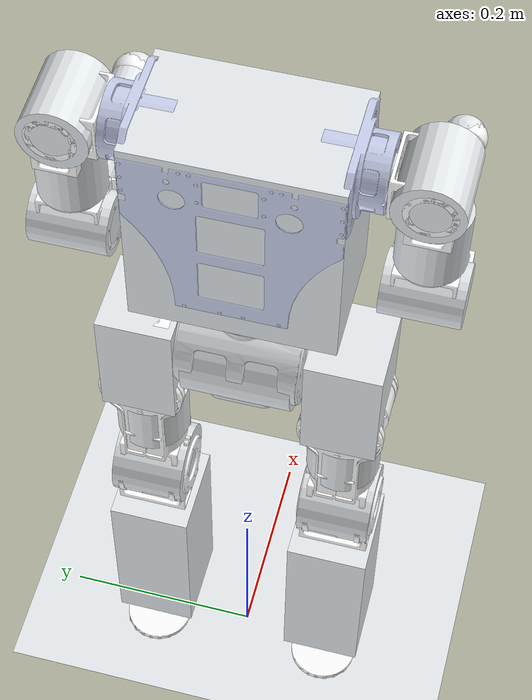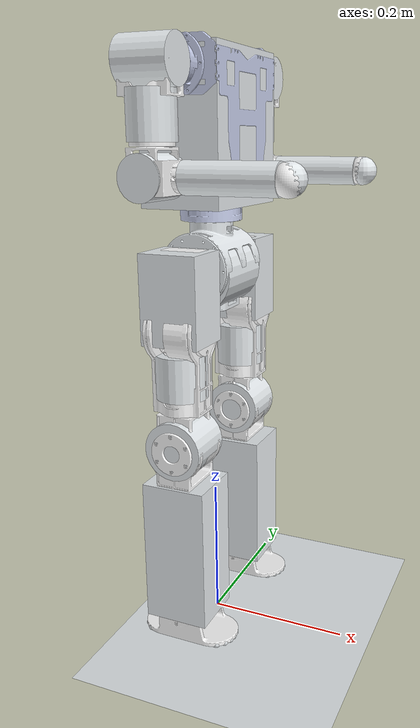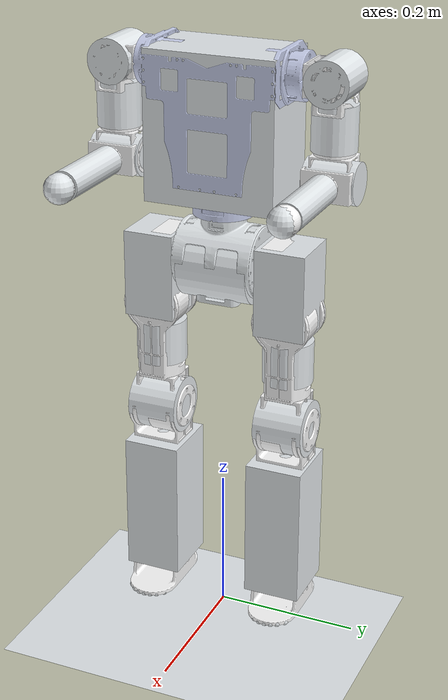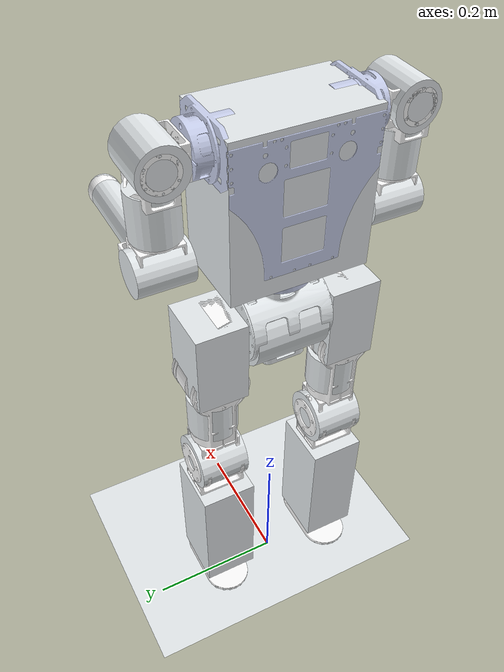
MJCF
<mujoco model="qlmini2">
    <compiler angle="radian" meshdir="../meshes/"/>
    <size njmax="500" nconmax="1000"/>
    <default>
        <light castshadow="false"/>
        <geom rgba="0.898 0.918 0.929 1"/>
        <default class="visual">
            <geom contype="0" conaffinity="0" group="0" type="mesh"/>
        </default>
        <default class="collision">
            <geom contype="1" conaffinity="1" friction="1.0 0.3 0.3"
                  margin="0" group="1"/>
        </default>
        <!-- Rotor inertia is not specified in the supplied motor manuals. -->
        <joint damping="0.1" frictionloss="0.02"/>
    </default>

    <asset>
        <mesh name="base_link" file="base_link.STL"/>
        <mesh name="right_hip_pitch_link" file="right_hip_pitch_link.STL"/>
        <mesh name="right_hip_roll_link" file="right_hip_roll_link.STL"/>
        <mesh name="right_hip_yaw_link" file="right_hip_yaw_link.STL"/>
        <mesh name="right_knee_link" file="right_knee_link.STL"/>
        <mesh name="right_foot" file="right_foot.STL"/>
        <mesh name="left_hip_pitch_link" file="left_hip_pitch_link.STL"/>
        <mesh name="left_hip_roll_link" file="left_hip_roll_link.STL"/>
        <mesh name="left_hip_yaw_link" file="left_hip_yaw_link.STL"/>
        <mesh name="left_knee_link" file="left_knee_link.STL"/>
        <mesh name="left_foot" file="left_foot.STL"/>
        <mesh name="waist_yaw_link" file="waist_yaw_link.STL"/>
        <mesh name="right_shoulder_pitch_link" file="right_shoulder_pitch_link.STL"/>
        <mesh name="right_shoulder_roll_link" file="right_shoulder_roll_link.STL"/>
        <mesh name="right_shoulder_yaw_link" file="right_shoulder_yaw_link.STL"/>
        <mesh name="right_elbow_link" file="right_elbow_link.STL"/>
        <mesh name="left_shoulder_pitch_link" file="left_shoulder_pitch_link.STL"/>
        <mesh name="left_shoulder_roll_link" file="left_shoulder_roll_link.STL"/>
        <mesh name="left_shoulder_yaw_link" file="left_shoulder_yaw_link.STL"/>
        <mesh name="left_elbow_link" file="left_elbow_link.STL"/>
        <texture type="skybox" builtin="flat" rgb1="0 0 0" rgb2="0 0 0" width="512" height="3072"/>
        <texture type="2d" name="groundplane" builtin="checker" mark="edge" rgb1="0.2 0.3 0.4" rgb2="0.1 0.2 0.3"
                 markrgb="0.8 0.8 0.8" width="300" height="300"/>
        <material name="groundplane" texture="groundplane" texuniform="true" texrepeat="5 5" reflectance="0.2"/>
    </asset>

    <worldbody>
        <light pos="1 0 3.5" dir="0 0 -1" directional="true"/>
        <geom name="floor" size="0 0 0.05" type="plane" material="groundplane"/>
        <!-- Coarse primitive collision bodies; dimensions are intended for later tuning. -->
        <body name="base_link" pos="0.00000000 0.00000000 0.48" quat="1 0 0 0">
            <freejoint name="floating_base_joint"/>
            <inertial pos="-5.73678996165089E-06 -1.69193884976709E-05 0.058874742378733" mass="1.6864" fullinertia="0.00328255380983 0.00197420750325 0.00294303911718 1.02078981554e-07 6.12473889324e-07 0"/>
            <geom class="visual" type="mesh" rgba="0.898 0.918 0.929 1" mesh="base_link"/>
            <geom name="base_link_collision" class="collision" type="cylinder" pos="0 0 0.05" size="0.05 0.05" euler="1.570796 0 0"/>
            <body name="right_hip_pitch_link" pos="0 -0.054017 0.059" quat="1.0 0.0 0.0 0.0">
                <joint name="right_hip_pitch_joint" range="-2.2689 2.2689" axis="0 1 0" armature="0.005"/>
                <inertial pos="0.00335760201078564 -0.0373080226674996 -0.0624910254096332" mass="0.6373" fullinertia="0.000959468049515 0.000875940475903 0.000435662239207 5.71504451028e-06 2.47285579772e-05 -0.000115729651333"/>
                <geom class="visual" type="mesh" rgba="1 1 1 1" mesh="right_hip_pitch_link"/>
                <geom name="right_hip_pitch_link_collision" class="collision" type="box" pos="0.0 -0.04 -0.03" size="0.04 0.035 0.06"/>
                <body name="right_hip_roll_link" pos="0.00945 -0.04 -0.074" quat="1.0 0.0 0.0 0.0">
                    <joint name="right_hip_roll_joint" range="-1.0472 0.8727" axis="1 0 0" armature="0.003"/>
                    <inertial pos="-0.0096013 -1.7563E-07 -0.060983" mass="0.5982" fullinertia="0.00105017033329 0.00119736747891 0.000458065536023 -3.20924009358e-07 4.38596146122e-06 0"/>
                    <geom class="visual" type="mesh" rgba="1 1 1 1" mesh="right_hip_roll_link"/>
                    <geom name="right_hip_roll_link_collision" class="collision" type="cylinder" pos="-0.01 0 -0.06" size="0.035 0.03"/>
                    <body name="right_hip_yaw_link" pos="-0.00945 0 -0.104" quat="1.0 0.0 0.0 0.0">
                        <joint name="right_hip_yaw_joint" range="-0.8727 0.8727" axis="0 0 1" armature="0.002"/>
                        <inertial pos="-4.23390510687766E-06 0.00413396977649125 -0.0521520218910281" mass="0.5783" fullinertia="0.000441333988583 0.000510358313677 0.000353000607916 0 -3.32914751257e-07 8.32286878143e-06"/>
                        <geom class="visual" type="mesh" rgba="1 1 1 1" mesh="right_hip_yaw_link"/>
                        <geom name="right_hip_yaw_link_collision" class="collision" type="cylinder" pos="0 0 -0.054" size="0.04 0.035" euler="1.570796 0 0"/>
                        <body name="right_knee_link" pos="0 0.00945 -0.056" quat="1.0 0.0 0.0 0.0">
                            <joint name="right_knee_joint" range="-0.1745 2.0499" axis="0 1 0" armature="0.003"/>
                            <inertial pos="7.14113041347386E-06 -0.00774899527578245 -0.163319540342136" mass="0.9700" fullinertia="0.00849153976784 0.00842953190829 0.00068783406411 0 3.31592831806e-07 0.000135068813489"/>
                            <geom class="visual" type="mesh" rgba="1 1 1 1" mesh="right_knee_link"/>
                            <geom name="right_knee_link_collision" class="collision" type="box" pos="0 -0.008 -0.15" size="0.045 0.04 0.1"/>
                            <body name="right_foot" pos="0 0 -0.23" quat="1.0 0.0 0.0 0.0">
                                <joint name="right_foot_pitch_joint" range="-1.0472 1.0472" axis="0 1 0" armature="0.003"/>
                                <inertial pos="0.00298442847510103 -0.00986247346418476 -0.025627500432694" mass="0.4411" fullinertia="0.000417784418845 0.000528973573876 0.000581887348508 -5.52915752035e-07 1.25544070305e-05 3.74976848163e-06"/>
                                <geom class="visual" type="mesh" rgba="1 1 1 1" mesh="right_foot"/>
                                <geom name="right_foot1_collision" class="collision" type="capsule" size="0.005" fromto="-0.046583 -0.035 -0.05 0.056583 -0.035 -0.05"/>
                                <geom name="right_foot2_collision" class="collision" type="capsule" size="0.005" fromto="-0.054944 -0.026667 -0.05 0.064944 -0.026667 -0.05"/>
                                <geom name="right_foot3_collision" class="collision" type="capsule" size="0.005" fromto="-0.058819 -0.018333 -0.05 0.068819 -0.018333 -0.05"/>
                                <geom name="right_foot4_collision" class="collision" type="capsule" size="0.005" fromto="-0.06 -0.01 -0.05 0.07 -0.01 -0.05"/>
                                <geom name="right_foot5_collision" class="collision" type="capsule" size="0.005" fromto="-0.058819 -0.001667 -0.05 0.068819 -0.001667 -0.05"/>
                                <geom name="right_foot6_collision" class="collision" type="capsule" size="0.005" fromto="-0.054944 0.006667 -0.05 0.064944 0.006667 -0.05"/>
                                <geom name="right_foot7_collision" class="collision" type="capsule" size="0.005" fromto="-0.046583 0.015 -0.05 0.056583 0.015 -0.05"/>
                                <site name="right_foot" pos="0.005 -0.01 -0.055" size="0.005"/>
                            </body>
                        </body>
                    </body>
                </body>
            </body>
            <body name="left_hip_pitch_link" pos="0 0.053983 0.059" quat="1.0 0.0 0.0 0.0">
                <joint name="left_hip_pitch_joint" range="-2.2689 2.2689" axis="0 1 0" armature="0.005"/>
                <inertial pos="0.0033576 0.037308 -0.062491" mass="0.6373" fullinertia="0.000959467884051 0.000875940324844 0.000435662164075 -5.7150435247e-06 2.47285537127e-05 0.000115729631375"/>
                <geom class="visual" type="mesh" rgba="1 1 1 1" mesh="left_hip_pitch_link"/>
                <geom name="left_hip_pitch_link_collision" class="collision" type="box" pos="0.0 0.04 -0.03" size="0.04 0.035 0.06"/>
                <body name="left_hip_roll_link" pos="0.00945 0.04 -0.074" quat="1.0 0.0 0.0 0.0">
                    <joint name="left_hip_roll_joint" range="-0.8727 1.0472" axis="1 0 0" armature="0.003"/>
                    <inertial pos="-0.00960126000015139 -1.75627821480395E-07 -0.0609829126488866" mass="0.5982" fullinertia="0.00105059823197 0.00119693958023 0.000458065536023 3.20924009358e-07 4.38596146122e-06 0"/>
                    <geom class="visual" type="mesh" rgba="1 1 1 1" mesh="left_hip_roll_link"/>
                    <geom name="left_hip_roll_link_collision" class="collision" type="cylinder" pos="-0.01 0 -0.06" size="0.035 0.03"/>
                    <body name="left_hip_yaw_link" pos="-0.00945 0 -0.104" quat="1.0 0.0 0.0 0.0">
                        <joint name="left_hip_yaw_joint" range="-0.8727 0.8727" axis="0 0 1" armature="0.002"/>
                        <inertial pos="1.8343574517167E-05 -0.00413396978427791 -0.0521438044149684" mass="0.5783" fullinertia="0.000441333988583 0.000510358313677 0.000353000607916 -1.10971583752e-07 -2.21943167505e-07 -8.32286878143e-06"/>
                        <geom class="visual" type="mesh" rgba="1 1 1 1" mesh="left_hip_yaw_link"/>
                        <geom name="left_hip_yaw_link_collision" class="collision" type="cylinder" pos="0 0 -0.054" size="0.04 0.035" euler="1.570796 0 0"/>
                        <body name="left_knee_link" pos="0 -0.00945 -0.056" quat="1.0 0.0 0.0 0.0">
                            <joint name="left_knee_joint" range="-0.1745 2.0944" axis="0 1 0" armature="0.003"/>
                            <inertial pos="6.3236898386887E-06 0.0077489947037703 -0.163324325687469" mass="0.9700" fullinertia="0.00849153976784 0.00842953190829 0.00068783406411 0 3.31592831806e-07 -0.000135068813489"/>
                            <geom class="visual" type="mesh" rgba="1 1 1 1" mesh="left_knee_link"/>
                            <geom name="left_knee_link_collision" class="collision" type="box" pos="0 0.008 -0.15" size="0.045 0.04 0.1"/>
                            <body name="left_foot" pos="0 0 -0.23" quat="1.0 0.0 0.0 0.0">
                                <joint name="left_foot_pitch_joint" range="-1.0472 1.0472" axis="0 1 0" armature="0.003"/>
                                <inertial pos="0.00298442754260854 0.00986282632621122 -0.0256275009097112" mass="0.4411" fullinertia="0.000417784287324 0.000528973572517 0.000581887219396 5.51836859986e-07 1.25544002699e-05 -3.75046153336e-06"/>
                                <geom class="visual" type="mesh" rgba="1 1 1 1" mesh="left_foot"/>
                                <!-- Mirrored rounded seven-strip sole; see right foot. -->
                                <geom name="left_foot1_collision" class="collision" type="capsule" size="0.005" fromto="-0.046583 0.035 -0.05 0.056583 0.035 -0.05"/>
                                <geom name="left_foot2_collision" class="collision" type="capsule" size="0.005" fromto="-0.054944 0.026667 -0.05 0.064944 0.026667 -0.05"/>
                                <geom name="left_foot3_collision" class="collision" type="capsule" size="0.005" fromto="-0.058819 0.018333 -0.05 0.068819 0.018333 -0.05"/>
                                <geom name="left_foot4_collision" class="collision" type="capsule" size="0.005" fromto="-0.06 0.01 -0.05 0.07 0.01 -0.05"/>
                                <geom name="left_foot5_collision" class="collision" type="capsule" size="0.005" fromto="-0.058819 0.001667 -0.05 0.068819 0.001667 -0.05"/>
                                <geom name="left_foot6_collision" class="collision" type="capsule" size="0.005" fromto="-0.054944 -0.006667 -0.05 0.064944 -0.006667 -0.05"/>
                                <geom name="left_foot7_collision" class="collision" type="capsule" size="0.005" fromto="-0.046583 -0.015 -0.05 0.056583 -0.015 -0.05"/>
                                <site name="left_foot" pos="0.005 0.01 -0.055" size="0.005"/>
                            </body>
                        </body>
                    </body>
                </body>
            </body>
            <body name="waist_yaw_link" pos="0 0 0.140558242606161" quat="1.0 0.0 0.0 0.0">
                <joint name="waist_yaw_joint" range="-0.8727 0.8727" axis="0 0 1" armature="0.003"/>
                <inertial pos="-0.00048399 -0.0020022 0.10215" mass="3.7654" fullinertia="0.022839850506 0.0169499877006 0.0119723543331 -6.69923324681e-06 8.53379250516e-05 -7.21455888117e-06"/>
                <geom class="visual" type="mesh" rgba="0.792 0.820 0.933 1" mesh="waist_yaw_link"/>
                <geom name="waist_yaw_link_collision" class="collision" type="box" pos="0 0 0.10" size="0.055 0.09 0.1"/>
                <body name="right_shoulder_pitch_link" pos="0 -0.0881 0.17234" quat="1.0 0.0 0.0 0.0">
                    <joint name="right_shoulder_pitch_joint" range="-2.7925 2.7925" axis="0 1 0" armature="0.002"/>
                    <inertial pos="-0.00210427996058867 -0.0585656923115873 -1.85446469039285E-05" mass="0.3076" fullinertia="0.000111349719581 0.000108010271571 0.000133890993648 -1.35665075403e-06 1.0435775031e-07 1.0435775031e-07"/>
                    <geom class="visual" type="mesh" rgba="1 1 1 1" mesh="right_shoulder_pitch_link"/>
                    <geom name="right_shoulder_pitch_link_collision" class="collision" type="cylinder" pos="0 -0.06 0" size="0.03 0.035" euler="0 1.570796 0"/>
                    <body name="right_shoulder_roll_link" pos="-0.0044996 -0.062176 -0.00015572" quat="1.0 0.0 0.0 0.0">
                        <joint name="right_shoulder_roll_joint" range="-3.2289 0.0873" axis="1 0 0" armature="0.0005"/>
                        <inertial pos="0.0041115542372811 0.000365350255664781 -0.0578635363052412" mass="0.370" fullinertia="0.000347636616098 0.000394341993528 0.000165910238461 0 8.49188680544e-06 -1.06148585068e-07"/>
                        <geom class="visual" type="mesh" rgba="1 1 1 1" mesh="right_shoulder_roll_link"/>
                        <geom name="right_shoulder_roll_link_collision" class="collision" type="cylinder" pos="0.005 0 -0.06" size="0.03 0.03"/>
                        <body name="right_shoulder_yaw_link" pos="0.0044996 0.00026128 -0.094639" quat="1.0 0.0 0.0 0.0">
                            <joint name="right_shoulder_yaw_joint" range="-2.9671 2.9671" axis="0 0 1" armature="0.0005"/>
                            <inertial pos="-8.56685334881674E-06 -0.00187746646855333 -0.0317422855661479" mass="0.3175" fullinertia="0.000139378786483 0.000114576781892 0.000112562943912 0 -1.0599147261e-07 -2.0138379796e-06"/>
                            <geom class="visual" type="mesh" rgba="1 1 1 1" mesh="right_shoulder_yaw_link"/>
                            <geom name="right_shoulder_yaw_link_collision" class="collision" type="cylinder" pos="0 0 -0.035" size="0.028 0.035" euler="1.570796 0 0"/>
                            <body name="right_elbow_link" pos="-0.00015572 -0.0043849 -0.034624" quat="1.0 0.0 0.0 0.0">
                                <joint name="right_elbow_joint" range="-0.1745 1.9199" axis="0 1 0" armature="0.0005"/>
                                <inertial pos="0.0786473480273473 0.00380297012793684 -0.000353678677222103" mass="0.1747" fullinertia="8.02889856028e-05 0.000755988369389 0.000797060292717 -9.62761213499e-06 3.53306867339e-07 8.83267168348e-08"/>
                                <geom class="visual" type="mesh" rgba="1 1 1 1" mesh="right_elbow_link"/>
                                <geom name="right_elbow_link_collision" class="collision" type="cylinder" pos="0.1 0.005 0" size="0.02 0.06" euler="0 1.5708 0"/>
                                <body name="right_hand" pos="0.17 0.005 0">
                                    <geom name="right_hand_collision" class="collision" type="sphere" size="0.02" mass="0"/>
                                    <site name="right_palm" pos="0 0 0" size="0.01"/>
                                </body>
                            </body>
                        </body>
                    </body>
                </body>
                <body name="left_shoulder_pitch_link" pos="0 0.0881 0.17234" quat="1.0 0.0 0.0 0.0">
                    <joint name="left_shoulder_pitch_joint" range="-2.7925 2.7925" axis="0 1 0" armature="0.002"/>
                    <inertial pos="-0.00210428325739485 0.0585226139172226 -7.07840754010647E-07" mass="0.3076" fullinertia="0.000111245324089 0.000108010234927 0.000133786590509 1.56536572358e-06 0 -1.04357714905e-07"/>
                    <geom class="visual" type="mesh" rgba="1 1 1 1" mesh="left_shoulder_pitch_link"/>
                    <geom name="left_shoulder_pitch_link_collision" class="collision" type="cylinder" pos="0 0.06 0" size="0.03 0.035" euler="0 1.570796 0"/>
                    <body name="left_shoulder_roll_link" pos="-0.0044996 0.061424 0.00015572" quat="1.0 0.0 0.0 0.0">
                        <joint name="left_shoulder_roll_joint" range="-0.0873 3.2289" axis="1 0 0" armature="0.0005"/>
                        <inertial pos="0.00412098513032669 0.000363759745852399 -0.0581749827430238" mass="0.370" fullinertia="0.000347742764683 0.000394235844943 0.000165910238461 -1.06148585068e-07 8.49188680544e-06 1.06148585068e-07"/>
                        <geom class="visual" type="mesh" rgba="1 1 1 1" mesh="left_shoulder_roll_link"/>
                        <geom name="left_shoulder_roll_link_collision" class="collision" type="cylinder" pos="0.005 0 -0.06" size="0.03 0.03"/>
                        <body name="left_shoulder_yaw_link" pos="0.0044996 0.00049061 -0.09495" quat="1.0 0.0 0.0 0.0">
                            <joint name="left_shoulder_yaw_joint" range="-2.9671 2.9671" axis="0 0 1" armature="0.0005"/>
                            <inertial pos="1.99648881145653E-05 0.00187745723766075 -0.0317708173076113" mass="0.3175" fullinertia="0.000139590769428 0.000114576781892 0.00011245695244 1.0599147261e-07 -1.0599147261e-07 1.90784650699e-06"/>
                            <geom class="visual" type="mesh" rgba="1 1 1 1" mesh="left_shoulder_yaw_link"/>
                            <geom name="left_shoulder_yaw_link_collision" class="collision" type="cylinder" pos="0 0 -0.035" size="0.028 0.035" euler="1.570796 0 0"/>
                            <body name="left_elbow_link" pos="0.00037594 0.0043849 -0.035156" quat="1.0 0.0 0.0 0.0">
                                <joint name="left_elbow_joint" range="-0.1745 1.9199" axis="0 1 0" armature="0.0005"/>
                                <inertial pos="0.0781156956631344 -0.00380297588342884 0.000177982252860054" mass="0.1747" fullinertia="8.02889856028e-05 0.000755988369389 0.000797060292717 9.62761213499e-06 3.53306867339e-07 -8.83267168348e-08"/>
                                <geom class="visual" type="mesh" rgba="1 1 1 1" mesh="left_elbow_link"/>
                                <geom name="left_elbow_link_collision" class="collision" type="cylinder" pos="0.1 -0.005 0" size="0.02 0.06" euler="0 1.5708 0"/>
                                <body name="left_hand" pos="0.17 -0.005 0">
                                    <geom name="left_hand_collision" class="collision" type="sphere" size="0.02" mass="0"/>
                                    <site name="left_palm" pos="0 0 0" size="0.01"/>
                                </body>
                            </body>
                        </body>
                    </body>
                </body>
            </body>
            <body name="imu_mount" pos="0 0 0.01" quat="1 0 0 0">
                <site name="base_link_site" pos="0 0 0" quat="1 0 0 0"/>
            </body>
            <camera name="front_camera" mode="track" fovy="90.0"
                    quat="4.329780281177467e-17 4.329780281177466e-17 0.7071067811865475 0.7071067811865476"
                    pos="0.0 2.0 0.5"/>
            <camera name="side_camera" mode="track" fovy="90.0" quat="-0.5 -0.4999999999999999 0.5 0.5000000000000001"
                    pos="-2.0 0.0 0.5"/>
        </body>
    </worldbody>

    <contact>
        <exclude body1="base_link" body2="right_hip_pitch_link"/>
        <exclude body1="right_hip_pitch_link" body2="right_hip_roll_link"/>
        <exclude body1="right_hip_roll_link" body2="right_hip_yaw_link"/>
        <exclude body1="right_hip_yaw_link" body2="right_knee_link"/>
        <exclude body1="right_knee_link" body2="right_foot"/>
        <exclude body1="base_link" body2="left_hip_pitch_link"/>
        <exclude body1="left_hip_pitch_link" body2="left_hip_roll_link"/>
        <exclude body1="left_hip_roll_link" body2="left_hip_yaw_link"/>
        <exclude body1="left_hip_yaw_link" body2="left_knee_link"/>
        <exclude body1="left_knee_link" body2="left_foot"/>
        <exclude body1="base_link" body2="waist_yaw_link"/>
        <exclude body1="waist_yaw_link" body2="right_shoulder_pitch_link"/>
        <exclude body1="right_shoulder_pitch_link" body2="right_shoulder_roll_link"/>
        <exclude body1="right_shoulder_roll_link" body2="right_shoulder_yaw_link"/>
        <exclude body1="right_shoulder_yaw_link" body2="right_elbow_link"/>
        <exclude body1="right_elbow_link" body2="right_hand"/>
        <exclude body1="waist_yaw_link" body2="left_shoulder_pitch_link"/>
        <exclude body1="left_shoulder_pitch_link" body2="left_shoulder_roll_link"/>
        <exclude body1="left_shoulder_roll_link" body2="left_shoulder_yaw_link"/>
        <exclude body1="left_shoulder_yaw_link" body2="left_elbow_link"/>
        <exclude body1="left_elbow_link" body2="left_hand"/>
    </contact>

    <!-- Deployment-only torque actuators. Limits are continuous output torques. -->
    <actuator>
        <motor name="right_hip_pitch_joint" joint="right_hip_pitch_joint" gear="1" ctrllimited="true" ctrlrange="-11 11" forcelimited="true" forcerange="-11 11"/>
        <motor name="right_hip_roll_joint" joint="right_hip_roll_joint" gear="1" ctrllimited="true" ctrlrange="-6 6" forcelimited="true" forcerange="-6 6"/>
        <motor name="right_hip_yaw_joint" joint="right_hip_yaw_joint" gear="1" ctrllimited="true" ctrlrange="-5 5" forcelimited="true" forcerange="-5 5"/>
        <motor name="right_knee_joint" joint="right_knee_joint" gear="1" ctrllimited="true" ctrlrange="-6 6" forcelimited="true" forcerange="-6 6"/>
        <motor name="right_foot_pitch_joint" joint="right_foot_pitch_joint" gear="1" ctrllimited="true" ctrlrange="-6 6" forcelimited="true" forcerange="-6 6"/>
        <motor name="left_hip_pitch_joint" joint="left_hip_pitch_joint" gear="1" ctrllimited="true" ctrlrange="-11 11" forcelimited="true" forcerange="-11 11"/>
        <motor name="left_hip_roll_joint" joint="left_hip_roll_joint" gear="1" ctrllimited="true" ctrlrange="-6 6" forcelimited="true" forcerange="-6 6"/>
        <motor name="left_hip_yaw_joint" joint="left_hip_yaw_joint" gear="1" ctrllimited="true" ctrlrange="-5 5" forcelimited="true" forcerange="-5 5"/>
        <motor name="left_knee_joint" joint="left_knee_joint" gear="1" ctrllimited="true" ctrlrange="-6 6" forcelimited="true" forcerange="-6 6"/>
        <motor name="left_foot_pitch_joint" joint="left_foot_pitch_joint" gear="1" ctrllimited="true" ctrlrange="-6 6" forcelimited="true" forcerange="-6 6"/>
        <motor name="waist_yaw_joint" joint="waist_yaw_joint" gear="1" ctrllimited="true" ctrlrange="-6 6" forcelimited="true" forcerange="-6 6"/>
        <motor name="right_shoulder_pitch_joint" joint="right_shoulder_pitch_joint" gear="1" ctrllimited="true" ctrlrange="-5 5" forcelimited="true" forcerange="-5 5"/>
        <motor name="right_shoulder_roll_joint" joint="right_shoulder_roll_joint" gear="1" ctrllimited="true" ctrlrange="-1.8 1.8" forcelimited="true" forcerange="-1.8 1.8"/>
        <motor name="right_shoulder_yaw_joint" joint="right_shoulder_yaw_joint" gear="1" ctrllimited="true" ctrlrange="-1.8 1.8" forcelimited="true" forcerange="-1.8 1.8"/>
        <motor name="right_elbow_joint" joint="right_elbow_joint" gear="1" ctrllimited="true" ctrlrange="-1.8 1.8" forcelimited="true" forcerange="-1.8 1.8"/>
        <motor name="left_shoulder_pitch_joint" joint="left_shoulder_pitch_joint" gear="1" ctrllimited="true" ctrlrange="-5 5" forcelimited="true" forcerange="-5 5"/>
        <motor name="left_shoulder_roll_joint" joint="left_shoulder_roll_joint" gear="1" ctrllimited="true" ctrlrange="-1.8 1.8" forcelimited="true" forcerange="-1.8 1.8"/>
        <motor name="left_shoulder_yaw_joint" joint="left_shoulder_yaw_joint" gear="1" ctrllimited="true" ctrlrange="-1.8 1.8" forcelimited="true" forcerange="-1.8 1.8"/>
        <motor name="left_elbow_joint" joint="left_elbow_joint" gear="1" ctrllimited="true" ctrlrange="-1.8 1.8" forcelimited="true" forcerange="-1.8 1.8"/>
    </actuator>

    <sensor>
        <gyro name="imu_ang_vel" site="base_link_site"/>
        <velocimeter name="imu_lin_vel" site="base_link_site"/>
        <subtreeangmom name="root_angmom" body="base_link"/>
        <framepos name="base_link_site_pos" objtype="site" objname="base_link_site"/>
        <framequat name="base_link_site_quat" objtype="site" objname="base_link_site"/>
        <framelinvel name="base_link_site_linvel" objtype="site" objname="base_link_site"/>
        <frameangvel name="base_link_site_angvel" objtype="site" objname="base_link_site"/>
        <velocimeter name="base_link_site_vel" site="base_link_site"/>
    </sensor>
    <statistic center="1.0 0 1.0" extent="0.8"/>
    <visual>
        <headlight diffuse="0.6 0.6 0.6" ambient="0.1 0.1 0.1" specular="0.9 0.9 0.9"/>
        <rgba haze="0.15 0.25 0.35 1"/>
        <global azimuth="-140" elevation="-20"/>
    </visual>
</mujoco>
